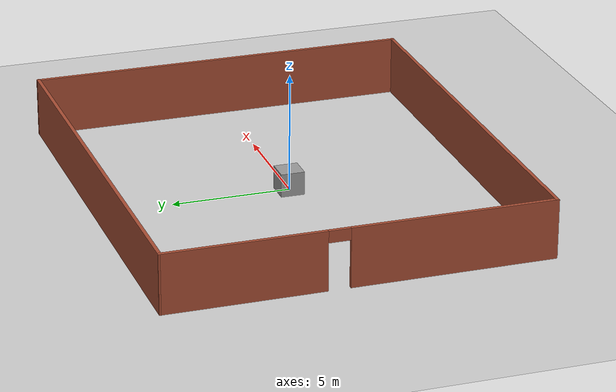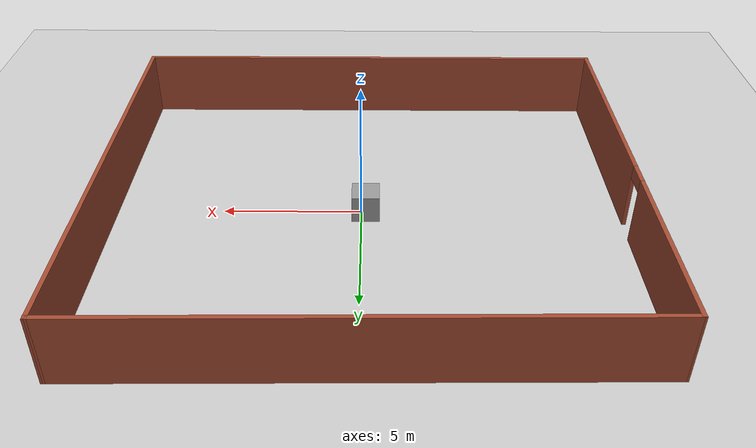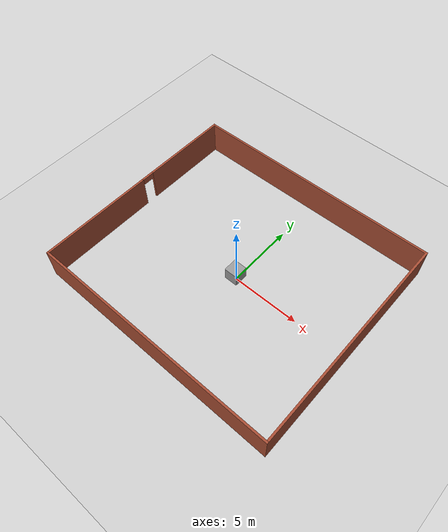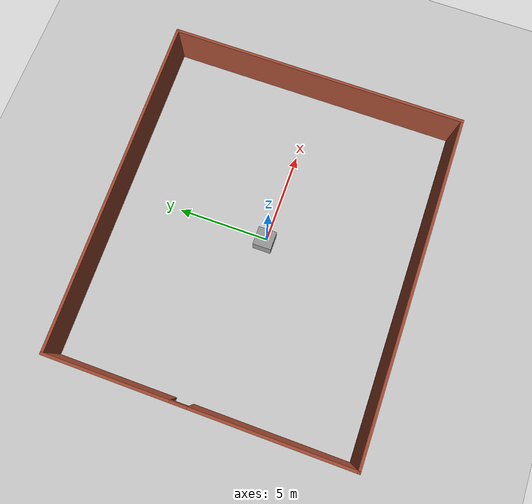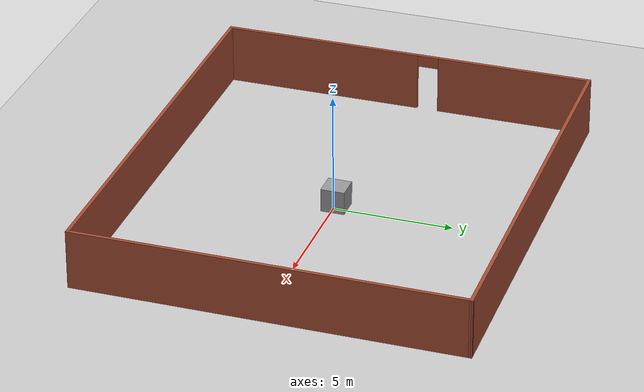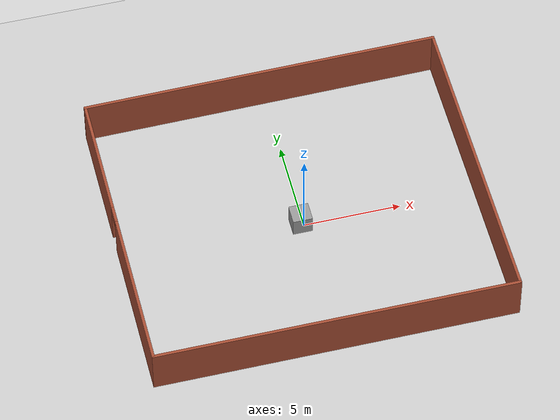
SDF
<sdf version="1.7">
 <world name="default">
  <light name="sun" type="directional">
   <pose>0 0 10 0 -0 0</pose>
   <diffuse>0.8 0.8 0.8 1</diffuse>
   <specular>0.2 0.2 0.2 1</specular>
   <attenuation>
    <range>1000</range>
    <constant>0.9</constant>
    <linear>0.01</linear>
    <quadratic>0.001</quadratic>
   </attenuation>
   <direction>-0.5 0.1 -0.9</direction>
   <spot><inner_angle>0</inner_angle><outer_angle>0</outer_angle><falloff>0</falloff></spot>
  </light>
  <model name="ground_plane">
   <static>1</static>
   <link name="link">
    <collision name="collision">
     <geometry><plane><normal>0 0 1</normal><size>100 100</size></plane></geometry>
     <surface>
      <contact><collide_bitmask>65535</collide_bitmask></contact>
      <friction><ode><mu>100</mu><mu2>50</mu2></ode></friction>
     </surface>
    </collision>
    <visual name="visual">
     <cast_shadows>0</cast_shadows>
     <geometry><plane><normal>0 0 1</normal><size>100 100</size></plane></geometry>
     <material>
      <script><uri>file://media/materials/scripts/gazebo.material</uri><name>Gazebo/Grey</name></script>
     </material>
    </visual>
   </link>
  </model>
  <gravity>0 0 -9.8</gravity>
  <magnetic_field>6e-06 2.3e-05 -4.2e-05</magnetic_field>
  <atmosphere type="adiabatic"/>
  <physics type="ode">
   <max_step_size>0.001</max_step_size>
   <real_time_factor>1</real_time_factor>
   <real_time_update_rate>1000</real_time_update_rate>
  </physics>
  <scene><ambient>0.4 0.4 0.4 1</ambient><background>0.7 0.7 0.7 1</background><shadows>1</shadows></scene>
  <spherical_coordinates>
   <surface_model>EARTH_WGS84</surface_model>
   <latitude_deg>0</latitude_deg>
   <longitude_deg>0</longitude_deg>
   <elevation>0</elevation>
   <heading_deg>0</heading_deg>
  </spherical_coordinates>
  <model name="room">
   <pose>-0.230805 0.313746 0 0 -0 0</pose>
   <link name="Wall_15">
    <pose>-9.175 -0.125507 0 0 -0 -1.5708</pose>
    <visual name="Wall_15_Visual_0">
     <pose>-4.68818 0 1.25 0 -0 0</pose>
     <geometry><box><size>6.62364 0.15 2.5</size></box></geometry>
     <material>
      <script><uri>file://media/materials/scripts/gazebo.material</uri><name>Gazebo/Bricks</name></script>
      <ambient>1 1 1 1</ambient>
     </material>
     <meta><layer>0</layer></meta>
    </visual>
    <collision name="Wall_15_Collision_0">
     <geometry><box><size>6.62364 0.15 2.5</size></box></geometry>
     <pose>-4.68818 0 1.25 0 -0 0</pose>
    </collision>
    <visual name="Wall_15_Visual_1">
     <pose>3.76182 0 1.25 0 -0 0</pose>
     <geometry><box><size>8.47636 0.15 2.5</size></box></geometry>
     <material>
      <script><uri>file://media/materials/scripts/gazebo.material</uri><name>Gazebo/Bricks</name></script>
      <ambient>1 1 1 1</ambient>
     </material>
     <meta><layer>0</layer></meta>
    </visual>
    <collision name="Wall_15_Collision_1">
     <geometry><box><size>8.47636 0.15 2.5</size></box></geometry>
     <pose>3.76182 0 1.25 0 -0 0</pose>
    </collision>
    <visual name="Wall_15_Visual_2">
     <pose>-0.92636 0 2.25 0 -0 0</pose>
     <geometry><box><size>0.9 0.15 0.5</size></box></geometry>
     <material>
      <script><uri>file://media/materials/scripts/gazebo.material</uri><name>Gazebo/Bricks</name></script>
      <ambient>1 1 1 1</ambient>
     </material>
     <meta><layer>0</layer></meta>
    </visual>
    <collision name="Wall_15_Collision_2">
     <geometry><box><size>0.9 0.15 0.5</size></box></geometry>
     <pose>-0.92636 0 2.25 0 -0 0</pose>
    </collision>
   </link>
   <link name="Wall_16">
    <collision name="Wall_16_Collision">
     <geometry><box><size>18.5 0.15 2.5</size></box></geometry>
     <pose>0 0 1.25 0 -0 0</pose>
    </collision>
    <visual name="Wall_16_Visual">
     <pose>0 0 1.25 0 -0 0</pose>
     <geometry><box><size>18.5 0.15 2.5</size></box></geometry>
     <material>
      <script><uri>file://media/materials/scripts/gazebo.material</uri><name>Gazebo/Bricks</name></script>
      <ambient>1 1 1 1</ambient>
     </material>
     <meta><layer>0</layer></meta>
    </visual>
    <pose>0 -8.05051 0 0 -0 0</pose>
   </link>
   <link name="Wall_17">
    <collision name="Wall_17_Collision">
     <geometry><box><size>16.25 0.15 2.5</size></box></geometry>
     <pose>0 0 1.25 0 -0 0</pose>
    </collision>
    <visual name="Wall_17_Visual">
     <pose>0 0 1.25 0 -0 0</pose>
     <geometry><box><size>16.25 0.15 2.5</size></box></geometry>
     <material>
      <script><uri>file://media/materials/scripts/gazebo.material</uri><name>Gazebo/Bricks</name></script>
      <ambient>1 1 1 1</ambient>
     </material>
     <meta><layer>0</layer></meta>
    </visual>
    <pose>9.175 -0.000507 0 0 -0 1.5708</pose>
   </link>
   <link name="Wall_18">
    <collision name="Wall_18_Collision">
     <geometry><box><size>18.5017 0.15 2.5</size></box></geometry>
     <pose>0 0 1.25 0 -0 0</pose>
    </collision>
    <visual name="Wall_18_Visual">
     <pose>0 0 1.25 0 -0 0</pose>
     <geometry><box><size>18.5017 0.15 2.5</size></box></geometry>
     <material>
      <script><uri>file://media/materials/scripts/gazebo.material</uri><name>Gazebo/Bricks</name></script>
      <ambient>1 1 1 1</ambient>
     </material>
     <meta><layer>0</layer></meta>
    </visual>
    <pose>0 7.92449 0 0 -0 -3.12797</pose>
   </link>
   <static>1</static>
  </model>
  <model name="unit_box">
   <pose>-0.160995 0.073517 0.5 0 -0 0</pose>
   <link name="link">
    <inertial>
     <mass>1</mass>
     <inertia>
      <ixx>0.166667</ixx>
      <ixy>0</ixy>
      <ixz>0</ixz>
      <iyy>0.166667</iyy>
      <iyz>0</iyz>
      <izz>0.166667</izz>
     </inertia>
    </inertial>
    <collision name="collision"><geometry><box><size>1 1 1</size></box></geometry></collision>
    <visual name="visual">
     <geometry><box><size>1 1 1</size></box></geometry>
     <material>
      <script><name>Gazebo/Grey</name><uri>file://media/materials/scripts/gazebo.material</uri></script>
     </material>
    </visual>
   </link>
  </model>
 </world>
</sdf>
